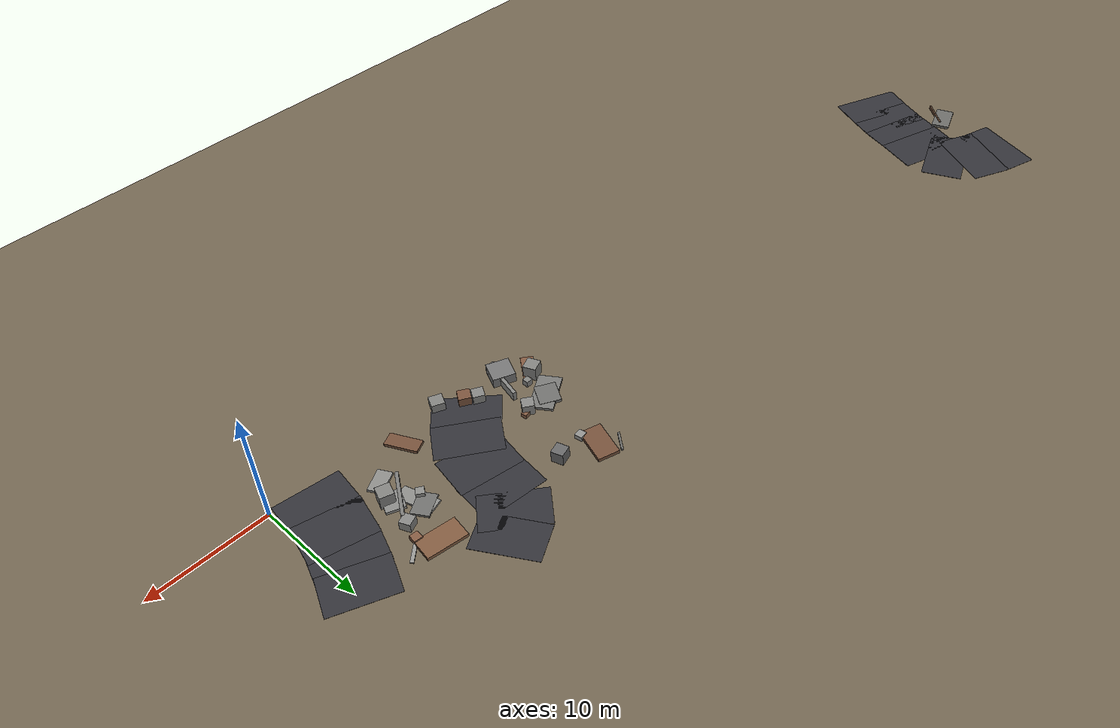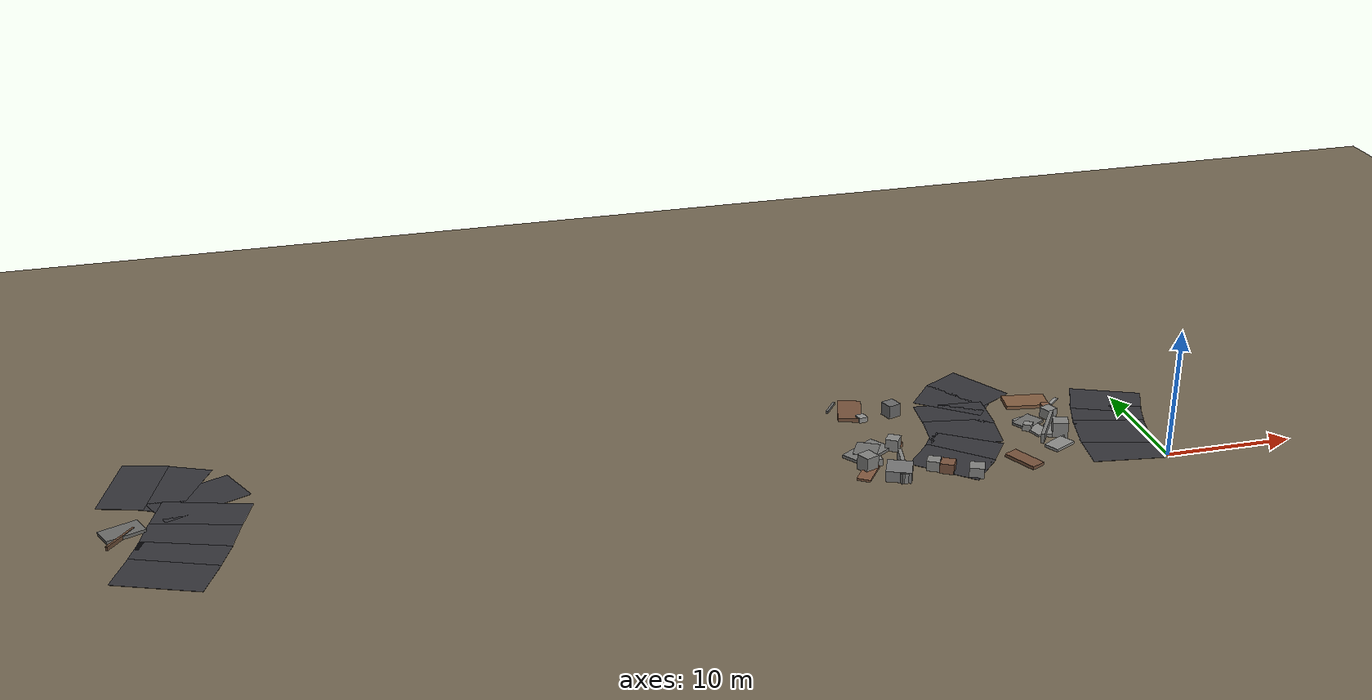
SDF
<sdf version="1.6">
 <world name="navitas_arena">
  <model name="ground_plane">
   <static>true</static>
   <link name="link">
    <collision name="collision">
     <geometry><plane><normal>0 0 1</normal><size>400 400</size></plane></geometry>
     <surface><friction><ode><mu>0.550</mu><mu2>0.550</mu2></ode></friction></surface>
    </collision>
    <visual name="visual">
     <cast_shadows>false</cast_shadows>
     <geometry><plane><normal>0 0 1</normal><size>400 400</size></plane></geometry>
     <material><ambient>0.450 0.400 0.320 1</ambient><diffuse>0.450 0.400 0.320 1</diffuse></material>
    </visual>
   </link>
  </model>
  <model name="road_kolay_3_11">
   <static>true</static>
   <pose>-72.841 1.333 0.040 0 0 1.183</pose>
   <link name="link">
    <collision name="col"><geometry><box><size>3.421 6.600 0.020</size></box></geometry></collision>
    <visual name="vis">
     <geometry><box><size>3.421 6.600 0.020</size></box></geometry>
     <material><ambient>0.20 0.20 0.22 1</ambient><diffuse>0.20 0.20 0.22 1</diffuse></material>
    </visual>
   </link>
  </model>
  <model name="road_kolay_3_12">
   <static>true</static>
   <pose>-71.941 3.667 0.040 0 0 1.223</pose>
   <link name="link">
    <collision name="col"><geometry><box><size>3.382 6.600 0.020</size></box></geometry></collision>
    <visual name="vis">
     <geometry><box><size>3.382 6.600 0.020</size></box></geometry>
     <material><ambient>0.20 0.20 0.22 1</ambient><diffuse>0.20 0.20 0.22 1</diffuse></material>
    </visual>
   </link>
  </model>
  <model name="road_kolay_3_13">
   <static>true</static>
   <pose>-71.153 6.137 0.040 0 0 1.298</pose>
   <link name="link">
    <collision name="col"><geometry><box><size>3.607 6.600 0.020</size></box></geometry></collision>
    <visual name="vis">
     <geometry><box><size>3.607 6.600 0.020</size></box></geometry>
     <material><ambient>0.20 0.20 0.22 1</ambient><diffuse>0.20 0.20 0.22 1</diffuse></material>
    </visual>
   </link>
  </model>
  <model name="road_kolay_3_14">
   <static>true</static>
   <pose>-70.324 8.910 0.040 0 0 1.265</pose>
   <link name="link">
    <collision name="col"><geometry><box><size>3.983 6.600 0.020</size></box></geometry></collision>
    <visual name="vis">
     <geometry><box><size>3.983 6.600 0.020</size></box></geometry>
     <material><ambient>0.20 0.20 0.22 1</ambient><diffuse>0.20 0.20 0.22 1</diffuse></material>
    </visual>
   </link>
  </model>
  <model name="road_kolay_3_15">
   <static>true</static>
   <pose>-70.450 11.690 0.040 0 0 1.994</pose>
   <link name="link">
    <collision name="col"><geometry><box><size>3.774 6.600 0.020</size></box></geometry></collision>
    <visual name="vis">
     <geometry><box><size>3.774 6.600 0.020</size></box></geometry>
     <material><ambient>0.20 0.20 0.22 1</ambient><diffuse>0.20 0.20 0.22 1</diffuse></material>
    </visual>
   </link>
  </model>
  <model name="road_kolay_3_16">
   <static>true</static>
   <pose>-72.366 13.615 0.040 0 0 2.707</pose>
   <link name="link">
    <collision name="col"><geometry><box><size>3.821 6.600 0.020</size></box></geometry></collision>
    <visual name="vis">
     <geometry><box><size>3.821 6.600 0.020</size></box></geometry>
     <material><ambient>0.20 0.20 0.22 1</ambient><diffuse>0.20 0.20 0.22 1</diffuse></material>
    </visual>
   </link>
  </model>
  <model name="road_kolay_3_17">
   <static>true</static>
   <pose>-74.929 14.594 0.040 0 0 2.856</pose>
   <link name="link">
    <collision name="col"><geometry><box><size>3.483 6.600 0.020</size></box></geometry></collision>
    <visual name="vis">
     <geometry><box><size>3.483 6.600 0.020</size></box></geometry>
     <material><ambient>0.20 0.20 0.22 1</ambient><diffuse>0.20 0.20 0.22 1</diffuse></material>
    </visual>
   </link>
  </model>
  <model name="deb_kolay_32">
   <static>true</static>
   <pose>-75.657 7.896 0.125 0 0 0.390</pose>
   <link name="link">
    <collision name="col"><geometry><box><size>2.895 1.666 0.249</size></box></geometry></collision>
    <visual name="vis">
     <geometry><box><size>2.895 1.666 0.249</size></box></geometry>
     <material><ambient>0.42 0.42 0.41 1</ambient><diffuse>0.42 0.42 0.41 1</diffuse></material>
    </visual>
   </link>
  </model>
  <model name="deb_kolay_91">
   <static>true</static>
   <pose>-75.753 6.921 0.152 0 0 0.915</pose>
   <link name="link">
    <collision name="col"><geometry><box><size>2.987 0.156 0.304</size></box></geometry></collision>
    <visual name="vis">
     <geometry><box><size>2.987 0.156 0.304</size></box></geometry>
     <material><ambient>0.45 0.32 0.23 1</ambient><diffuse>0.45 0.32 0.23 1</diffuse></material>
    </visual>
   </link>
  </model>
  <model name="road_orta_1_13">
   <static>true</static>
   <pose>-16.026 3.000 0.040 0 0 0.835</pose>
   <link name="link">
    <collision name="col"><geometry><box><size>3.599 5.500 0.020</size></box></geometry></collision>
    <visual name="vis">
     <geometry><box><size>3.599 5.500 0.020</size></box></geometry>
     <material><ambient>0.20 0.20 0.22 1</ambient><diffuse>0.20 0.20 0.22 1</diffuse></material>
    </visual>
   </link>
  </model>
  <model name="road_orta_1_14">
   <static>true</static>
   <pose>-14.423 5.000 0.040 0 0 0.962</pose>
   <link name="link">
    <collision name="col"><geometry><box><size>3.337 5.500 0.020</size></box></geometry></collision>
    <visual name="vis">
     <geometry><box><size>3.337 5.500 0.020</size></box></geometry>
     <material><ambient>0.20 0.20 0.22 1</ambient><diffuse>0.20 0.20 0.22 1</diffuse></material>
    </visual>
   </link>
  </model>
  <model name="road_orta_1_15">
   <static>true</static>
   <pose>-13.483 7.460 0.040 0 0 1.406</pose>
   <link name="link">
    <collision name="col"><geometry><box><size>3.860 5.500 0.020</size></box></geometry></collision>
    <visual name="vis">
     <geometry><box><size>3.860 5.500 0.020</size></box></geometry>
     <material><ambient>0.20 0.20 0.22 1</ambient><diffuse>0.20 0.20 0.22 1</diffuse></material>
    </visual>
   </link>
  </model>
  <model name="road_orta_1_16">
   <static>true</static>
   <pose>-13.115 10.340 0.040 0 0 1.483</pose>
   <link name="link">
    <collision name="col"><geometry><box><size>3.751 5.500 0.020</size></box></geometry></collision>
    <visual name="vis">
     <geometry><box><size>3.751 5.500 0.020</size></box></geometry>
     <material><ambient>0.20 0.20 0.22 1</ambient><diffuse>0.20 0.20 0.22 1</diffuse></material>
    </visual>
   </link>
  </model>
  <model name="road_orta_1_17">
   <static>true</static>
   <pose>-12.224 12.724 0.040 0 0 0.899</pose>
   <link name="link">
    <collision name="col"><geometry><box><size>3.364 5.500 0.020</size></box></geometry></collision>
    <visual name="vis">
     <geometry><box><size>3.364 5.500 0.020</size></box></geometry>
     <material><ambient>0.20 0.20 0.22 1</ambient><diffuse>0.20 0.20 0.22 1</diffuse></material>
    </visual>
   </link>
  </model>
  <model name="road_orta_1_18">
   <static>true</static>
   <pose>-10.404 14.302 0.040 0 0 0.527</pose>
   <link name="link">
    <collision name="col"><geometry><box><size>3.338 5.500 0.020</size></box></geometry></collision>
    <visual name="vis">
     <geometry><box><size>3.338 5.500 0.020</size></box></geometry>
     <material><ambient>0.20 0.20 0.22 1</ambient><diffuse>0.20 0.20 0.22 1</diffuse></material>
    </visual>
   </link>
  </model>
  <model name="road_orta_2_9">
   <static>true</static>
   <pose>-2.893 1.800 0.040 0 0 1.440</pose>
   <link name="link">
    <collision name="col"><geometry><box><size>3.724 5.500 0.020</size></box></geometry></collision>
    <visual name="vis">
     <geometry><box><size>3.724 5.500 0.020</size></box></geometry>
     <material><ambient>0.20 0.20 0.22 1</ambient><diffuse>0.20 0.20 0.22 1</diffuse></material>
    </visual>
   </link>
  </model>
  <model name="road_orta_2_10">
   <static>true</static>
   <pose>-2.361 4.600 0.040 0 0 1.327</pose>
   <link name="link">
    <collision name="col"><geometry><box><size>3.785 5.500 0.020</size></box></geometry></collision>
    <visual name="vis">
     <geometry><box><size>3.785 5.500 0.020</size></box></geometry>
     <material><ambient>0.20 0.20 0.22 1</ambient><diffuse>0.20 0.20 0.22 1</diffuse></material>
    </visual>
   </link>
  </model>
  <model name="road_orta_2_11">
   <static>true</static>
   <pose>-1.587 7.213 0.040 0 0 1.232</pose>
   <link name="link">
    <collision name="col"><geometry><box><size>3.472 5.500 0.020</size></box></geometry></collision>
    <visual name="vis">
     <geometry><box><size>3.472 5.500 0.020</size></box></geometry>
     <material><ambient>0.20 0.20 0.22 1</ambient><diffuse>0.20 0.20 0.22 1</diffuse></material>
    </visual>
   </link>
  </model>
  <model name="road_orta_2_12">
   <static>true</static>
   <pose>-0.625 9.639 0.040 0 0 1.156</pose>
   <link name="link">
    <collision name="col"><geometry><box><size>3.551 5.500 0.020</size></box></geometry></collision>
    <visual name="vis">
     <geometry><box><size>3.551 5.500 0.020</size></box></geometry>
     <material><ambient>0.20 0.20 0.22 1</ambient><diffuse>0.20 0.20 0.22 1</diffuse></material>
    </visual>
   </link>
  </model>
  <model name="blk_orta_1_1_0">
   <static>true</static>
   <pose>-16.863 1.840 0.400 0 0 2.600</pose>
   <link name="link">
    <collision name="col"><geometry><box><size>1.045 1.045 0.800</size></box></geometry></collision>
    <visual name="vis">
     <geometry><box><size>1.045 1.045 0.800</size></box></geometry>
     <material><ambient>0.48 0.33 0.24 1</ambient><diffuse>0.48 0.33 0.24 1</diffuse></material>
    </visual>
   </link>
  </model>
  <model name="blk_orta_1_1_1">
   <static>true</static>
   <pose>-15.013 0.730 0.400 0 0 1.146</pose>
   <link name="link">
    <collision name="col"><geometry><box><size>1.104 1.104 0.800</size></box></geometry></collision>
    <visual name="vis">
     <geometry><box><size>1.104 1.104 0.800</size></box></geometry>
     <material><ambient>0.51 0.51 0.50 1</ambient><diffuse>0.51 0.51 0.50 1</diffuse></material>
    </visual>
   </link>
  </model>
  <model name="blk_orta_1_1_2">
   <static>true</static>
   <pose>-20.510 1.298 0.400 0 0 1.871</pose>
   <link name="link">
    <collision name="col"><geometry><box><size>0.890 0.890 0.800</size></box></geometry></collision>
    <visual name="vis">
     <geometry><box><size>0.890 0.890 0.800</size></box></geometry>
     <material><ambient>0.43 0.43 0.42 1</ambient><diffuse>0.43 0.43 0.42 1</diffuse></material>
    </visual>
   </link>
  </model>
  <model name="blk_orta_1_1_3">
   <static>true</static>
   <pose>-20.058 2.720 0.400 0 0 1.358</pose>
   <link name="link">
    <collision name="col"><geometry><box><size>3.988 0.302 0.800</size></box></geometry></collision>
    <visual name="vis">
     <geometry><box><size>3.988 0.302 0.800</size></box></geometry>
     <material><ambient>0.52 0.52 0.51 1</ambient><diffuse>0.52 0.52 0.51 1</diffuse></material>
    </visual>
   </link>
  </model>
  <model name="blk_orta_1_1_4">
   <static>true</static>
   <pose>-20.617 1.936 0.425 0 0 1.165</pose>
   <link name="link">
    <collision name="col"><geometry><box><size>1.911 1.911 0.850</size></box></geometry></collision>
    <visual name="vis">
     <geometry><box><size>1.911 1.911 0.850</size></box></geometry>
     <material><ambient>0.46 0.46 0.46 1</ambient><diffuse>0.46 0.46 0.46 1</diffuse></material>
    </visual>
   </link>
  </model>
  <model name="blk_orta_1_1_5">
   <static>true</static>
   <pose>-17.742 2.470 0.400 0 0 2.647</pose>
   <link name="link">
    <collision name="col"><geometry><box><size>0.980 0.980 0.800</size></box></geometry></collision>
    <visual name="vis">
     <geometry><box><size>0.980 0.980 0.800</size></box></geometry>
     <material><ambient>0.52 0.52 0.51 1</ambient><diffuse>0.52 0.52 0.51 1</diffuse></material>
    </visual>
   </link>
  </model>
  <model name="deb_orta_3">
   <static>true</static>
   <pose>-10.783 1.837 0.128 0 0 2.022</pose>
   <link name="link">
    <collision name="col"><geometry><box><size>2.773 1.170 0.256</size></box></geometry></collision>
    <visual name="vis">
     <geometry><box><size>2.773 1.170 0.256</size></box></geometry>
     <material><ambient>0.46 0.32 0.23 1</ambient><diffuse>0.46 0.32 0.23 1</diffuse></material>
    </visual>
   </link>
  </model>
  <model name="deb_orta_4">
   <static>true</static>
   <pose>-8.088 7.564 0.100 0 0 0.557</pose>
   <link name="link">
    <collision name="col"><geometry><box><size>2.057 1.503 0.199</size></box></geometry></collision>
    <visual name="vis">
     <geometry><box><size>2.057 1.503 0.199</size></box></geometry>
     <material><ambient>0.44 0.44 0.43 1</ambient><diffuse>0.44 0.44 0.43 1</diffuse></material>
    </visual>
   </link>
  </model>
  <model name="deb_orta_10">
   <static>true</static>
   <pose>-22.674 2.898 0.085 0 0 0.954</pose>
   <link name="link">
    <collision name="col"><geometry><box><size>2.467 1.047 0.170</size></box></geometry></collision>
    <visual name="vis">
     <geometry><box><size>2.467 1.047 0.170</size></box></geometry>
     <material><ambient>0.51 0.35 0.25 1</ambient><diffuse>0.51 0.35 0.25 1</diffuse></material>
    </visual>
   </link>
  </model>
  <model name="deb_orta_17">
   <static>true</static>
   <pose>-8.511 6.616 0.267 0 0 0.958</pose>
   <link name="link">
    <collision name="col"><geometry><box><size>0.677 0.677 0.535</size></box></geometry></collision>
    <visual name="vis">
     <geometry><box><size>0.677 0.677 0.535</size></box></geometry>
     <material><ambient>0.55 0.55 0.54 1</ambient><diffuse>0.55 0.55 0.54 1</diffuse></material>
    </visual>
   </link>
  </model>
  <model name="deb_orta_33">
   <static>true</static>
   <pose>-6.139 8.185 0.398 0 0 0.410</pose>
   <link name="link">
    <collision name="col"><geometry><box><size>0.937 0.937 0.797</size></box></geometry></collision>
    <visual name="vis">
     <geometry><box><size>0.937 0.937 0.797</size></box></geometry>
     <material><ambient>0.53 0.53 0.52 1</ambient><diffuse>0.53 0.53 0.52 1</diffuse></material>
    </visual>
   </link>
  </model>
  <model name="deb_orta_43">
   <static>true</static>
   <pose>-20.369 11.268 0.208 0 0 1.748</pose>
   <link name="link">
    <collision name="col"><geometry><box><size>0.670 0.670 0.415</size></box></geometry></collision>
    <visual name="vis">
     <geometry><box><size>0.670 0.670 0.415</size></box></geometry>
     <material><ambient>0.57 0.57 0.56 1</ambient><diffuse>0.57 0.57 0.56 1</diffuse></material>
    </visual>
   </link>
  </model>
  <model name="deb_orta_65">
   <static>true</static>
   <pose>-22.484 3.611 0.605 0 0 1.968</pose>
   <link name="link">
    <collision name="col"><geometry><box><size>1.109 1.109 1.210</size></box></geometry></collision>
    <visual name="vis">
     <geometry><box><size>1.109 1.109 1.210</size></box></geometry>
     <material><ambient>0.51 0.51 0.50 1</ambient><diffuse>0.51 0.51 0.50 1</diffuse></material>
    </visual>
   </link>
  </model>
  <model name="deb_orta_66">
   <static>true</static>
   <pose>-6.931 10.889 0.139 0 0 3.000</pose>
   <link name="link">
    <collision name="col"><geometry><box><size>3.389 1.929 0.278</size></box></geometry></collision>
    <visual name="vis">
     <geometry><box><size>3.389 1.929 0.278</size></box></geometry>
     <material><ambient>0.51 0.36 0.25 1</ambient><diffuse>0.51 0.36 0.25 1</diffuse></material>
    </visual>
   </link>
  </model>
  <model name="deb_orta_76">
   <static>true</static>
   <pose>-21.689 6.202 0.131 0 0 1.068</pose>
   <link name="link">
    <collision name="col"><geometry><box><size>1.992 1.772 0.263</size></box></geometry></collision>
    <visual name="vis">
     <geometry><box><size>1.992 1.772 0.263</size></box></geometry>
     <material><ambient>0.44 0.44 0.43 1</ambient><diffuse>0.44 0.44 0.43 1</diffuse></material>
    </visual>
   </link>
  </model>
  <model name="deb_orta_81">
   <static>true</static>
   <pose>-4.856 10.366 0.062 0 0 0.729</pose>
   <link name="link">
    <collision name="col"><geometry><box><size>1.690 0.287 0.124</size></box></geometry></collision>
    <visual name="vis">
     <geometry><box><size>1.690 0.287 0.124</size></box></geometry>
     <material><ambient>0.59 0.59 0.58 1</ambient><diffuse>0.59 0.59 0.58 1</diffuse></material>
    </visual>
   </link>
  </model>
  <model name="deb_orta_87">
   <static>true</static>
   <pose>-22.049 13.866 0.100 0 0 0.936</pose>
   <link name="link">
    <collision name="col"><geometry><box><size>1.723 0.176 0.201</size></box></geometry></collision>
    <visual name="vis">
     <geometry><box><size>1.723 0.176 0.201</size></box></geometry>
     <material><ambient>0.42 0.42 0.41 1</ambient><diffuse>0.42 0.42 0.41 1</diffuse></material>
    </visual>
   </link>
  </model>
  <model name="deb_orta_88">
   <static>true</static>
   <pose>-20.847 12.808 0.148 0 0 1.270</pose>
   <link name="link">
    <collision name="col"><geometry><box><size>3.149 1.822 0.297</size></box></geometry></collision>
    <visual name="vis">
     <geometry><box><size>3.149 1.822 0.297</size></box></geometry>
     <material><ambient>0.46 0.32 0.23 1</ambient><diffuse>0.46 0.32 0.23 1</diffuse></material>
    </visual>
   </link>
  </model>
  <model name="deb_orta_105">
   <static>true</static>
   <pose>-21.483 4.121 0.273 0 0 1.575</pose>
   <link name="link">
    <collision name="col"><geometry><box><size>0.546 0.546 0.546</size></box></geometry></collision>
    <visual name="vis">
     <geometry><box><size>0.546 0.546 0.546</size></box></geometry>
     <material><ambient>0.51 0.51 0.50 1</ambient><diffuse>0.51 0.51 0.50 1</diffuse></material>
    </visual>
   </link>
  </model>
  <model name="deb_orta_107">
   <static>true</static>
   <pose>-8.077 6.869 0.089 0 0 1.870</pose>
   <link name="link">
    <collision name="col"><geometry><box><size>3.141 1.265 0.177</size></box></geometry></collision>
    <visual name="vis">
     <geometry><box><size>3.141 1.265 0.177</size></box></geometry>
     <material><ambient>0.55 0.55 0.54 1</ambient><diffuse>0.55 0.55 0.54 1</diffuse></material>
    </visual>
   </link>
  </model>
  <model name="deb_orta_111">
   <static>true</static>
   <pose>-7.245 3.521 0.111 0 0 0.505</pose>
   <link name="link">
    <collision name="col"><geometry><box><size>1.999 1.241 0.222</size></box></geometry></collision>
    <visual name="vis">
     <geometry><box><size>1.999 1.241 0.222</size></box></geometry>
     <material><ambient>0.55 0.55 0.54 1</ambient><diffuse>0.55 0.55 0.54 1</diffuse></material>
    </visual>
   </link>
  </model>
  <model name="deb_orta_113">
   <static>true</static>
   <pose>-5.750 9.558 0.201 0 0 1.487</pose>
   <link name="link">
    <collision name="col"><geometry><box><size>0.706 0.706 0.402</size></box></geometry></collision>
    <visual name="vis">
     <geometry><box><size>0.706 0.706 0.402</size></box></geometry>
     <material><ambient>0.52 0.36 0.26 1</ambient><diffuse>0.52 0.36 0.26 1</diffuse></material>
    </visual>
   </link>
  </model>
  <model name="deb_orta_115">
   <static>true</static>
   <pose>-19.048 6.518 0.177 0 0 0.167</pose>
   <link name="link">
    <collision name="col"><geometry><box><size>0.519 0.519 0.354</size></box></geometry></collision>
    <visual name="vis">
     <geometry><box><size>0.519 0.519 0.354</size></box></geometry>
     <material><ambient>0.51 0.36 0.26 1</ambient><diffuse>0.51 0.36 0.26 1</diffuse></material>
    </visual>
   </link>
  </model>
  <model name="deb_orta_118">
   <static>true</static>
   <pose>-6.714 5.704 0.122 0 0 1.179</pose>
   <link name="link">
    <collision name="col"><geometry><box><size>1.828 1.548 0.244</size></box></geometry></collision>
    <visual name="vis">
     <geometry><box><size>1.828 1.548 0.244</size></box></geometry>
     <material><ambient>0.54 0.54 0.53 1</ambient><diffuse>0.54 0.54 0.53 1</diffuse></material>
    </visual>
   </link>
  </model>
  <model name="deb_orta_120">
   <static>true</static>
   <pose>-19.568 6.243 0.472 0 0 0.973</pose>
   <link name="link">
    <collision name="col"><geometry><box><size>0.989 0.989 0.944</size></box></geometry></collision>
    <visual name="vis">
     <geometry><box><size>0.989 0.989 0.944</size></box></geometry>
     <material><ambient>0.53 0.53 0.52 1</ambient><diffuse>0.53 0.53 0.52 1</diffuse></material>
    </visual>
   </link>
  </model>
  <model name="deb_orta_130">
   <static>true</static>
   <pose>-17.845 11.667 0.525 0 0 0.311</pose>
   <link name="link">
    <collision name="col"><geometry><box><size>1.043 1.043 1.051</size></box></geometry></collision>
    <visual name="vis">
     <geometry><box><size>1.043 1.043 1.051</size></box></geometry>
     <material><ambient>0.41 0.41 0.41 1</ambient><diffuse>0.41 0.41 0.41 1</diffuse></material>
    </visual>
   </link>
  </model>
  <model name="deb_orta_138">
   <static>true</static>
   <pose>-21.717 5.970 0.118 0 0 0.592</pose>
   <link name="link">
    <collision name="col"><geometry><box><size>3.489 1.960 0.237</size></box></geometry></collision>
    <visual name="vis">
     <geometry><box><size>3.489 1.960 0.237</size></box></geometry>
     <material><ambient>0.47 0.47 0.46 1</ambient><diffuse>0.47 0.47 0.46 1</diffuse></material>
    </visual>
   </link>
  </model>
  <model name="deb_orta_144">
   <static>true</static>
   <pose>-6.475 5.236 0.603 0 0 2.798</pose>
   <link name="link">
    <collision name="col"><geometry><box><size>1.169 1.169 1.205</size></box></geometry></collision>
    <visual name="vis">
     <geometry><box><size>1.169 1.169 1.205</size></box></geometry>
     <material><ambient>0.51 0.51 0.50 1</ambient><diffuse>0.51 0.51 0.50 1</diffuse></material>
    </visual>
   </link>
  </model>
  <model name="chic_orta_2">
   <static>true</static>
   <pose>-7.236 5.921 0.400 0 0 1.009</pose>
   <link name="link">
    <collision name="col"><geometry><box><size>4.153 0.273 0.800</size></box></geometry></collision>
    <visual name="vis">
     <geometry><box><size>4.153 0.273 0.800</size></box></geometry>
     <material><ambient>0.48 0.48 0.47 1</ambient><diffuse>0.48 0.48 0.47 1</diffuse></material>
    </visual>
   </link>
  </model>
 </world>
</sdf>
